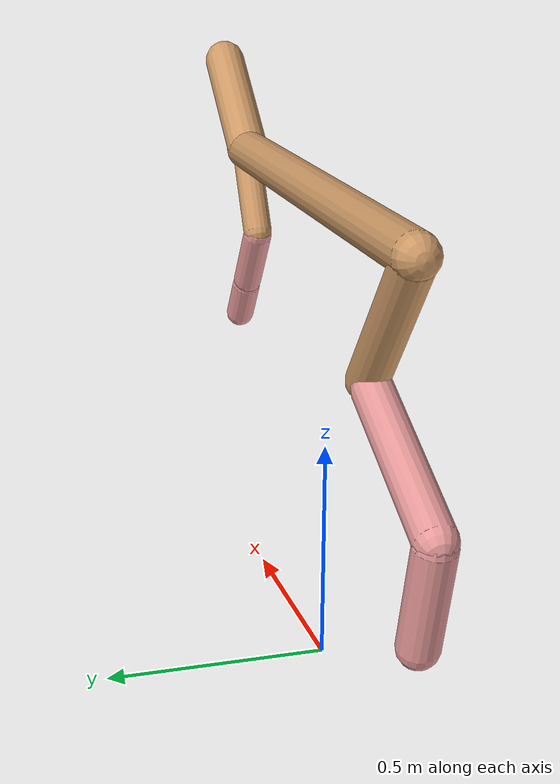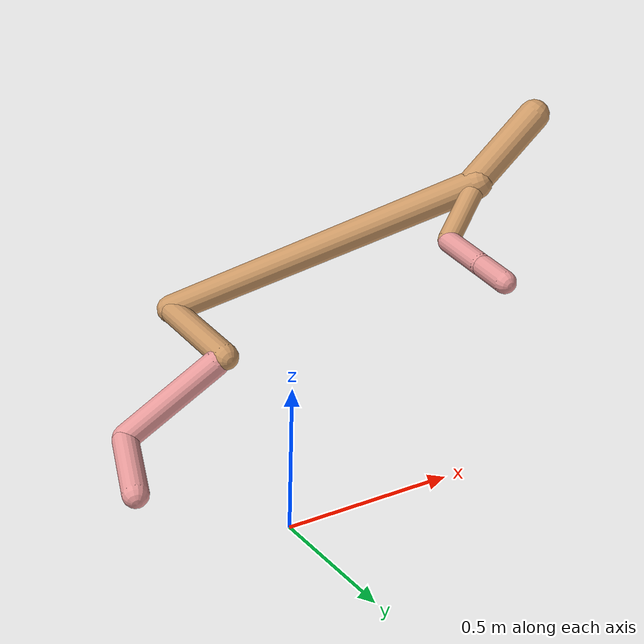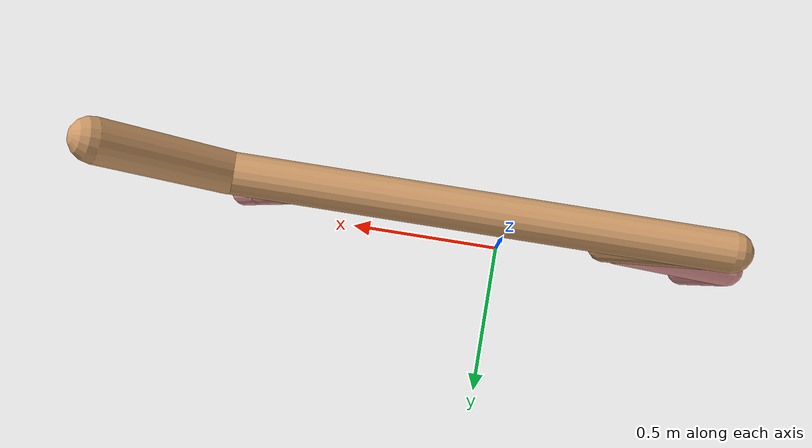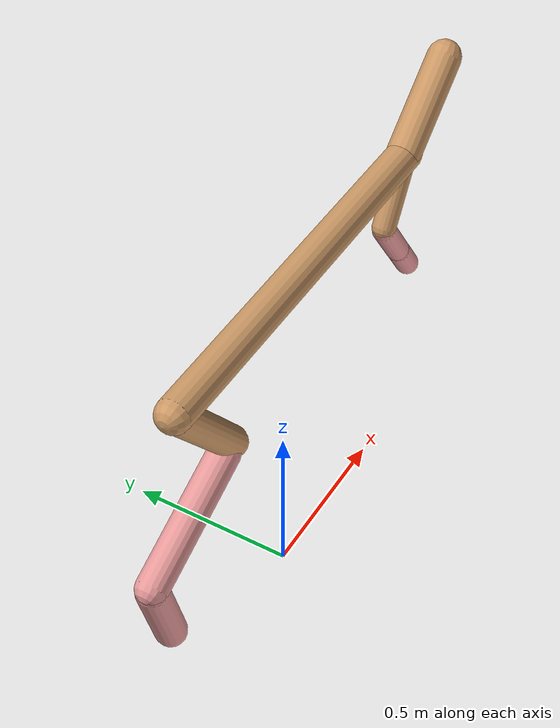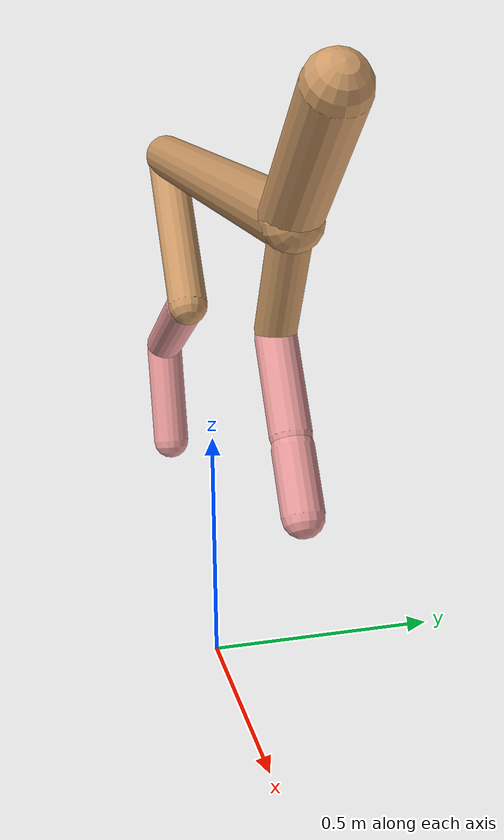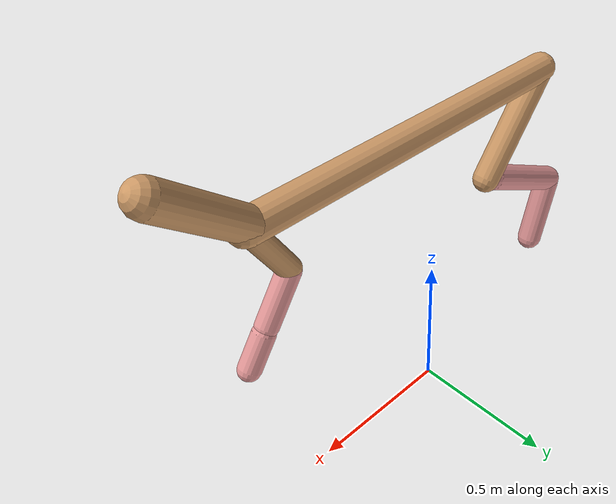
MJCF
<mujoco model="cheetah">
  <compiler angle="radian" coordinate="local" inertiafromgeom="true" settotalmass="14" />
  <default>
    <joint armature=".1" damping=".01" limited="true" solimplimit="0 .8 .03" solreflimit=".02 1" stiffness="8" />
    <geom conaffinity="0" condim="3" contype="1" friction="0.8 .1 .1" rgba="0.8 0.6 .4 1" solimp="0.0 0.8 0.01" solref="0.02 1" />
    <motor ctrllimited="true" ctrlrange="-1 1" />
  </default>
  <size nstack="300000" nuser_geom="1" />
  <option gravity="0 0 -9.81" timestep="0.01" />
  <worldbody>
    <body name="torso" pos="0.0 0.0 1.0504768378590348">
      <joint armature="0" axis="1 0 0" damping="0" limited="false" name="ignorex" pos="0 0 0" stiffness="0" type="slide" />
      <joint armature="0" axis="0 0 1" damping="0" limited="false" name="ignorez" pos="0 0 0" stiffness="0" type="slide" />
      <joint armature="0" axis="0 1 0" damping="0" limited="false" name="ignorey" pos="0 0 0" stiffness="0" type="hinge" />
      <geom fromto="-0.5 0.0 0.0 0.6703005884586217 0.0 0.0" name="torso" size="0.0488193597700665" type="capsule" />
      <geom axisangle="0 1 0 .87" name="head" pos="0.7703005884586217 0.0 0.1" size="0.049629434595246005 0.15" type="capsule" />

      <body name="bthigh" pos="-.5 0 0">
        <joint axis="0 1 0" damping="6" name="bthigh" pos="0 0 0" range="-.52 1.05" stiffness="240" type="hinge" />
        <geom axisangle="0 1 0 -3.8" name="bthigh" pos="0.12625845544349817 0.0 -0.1641359920765476" size="0.04475207796878393 0.18806706905894918" type="capsule" />
        <body name="bshin" pos="0.2125169108869963 0.0 -0.3182719841530952">
          <joint axis="0 1 0" damping="4.5" name="bshin" pos="0 0 0" range="-.785 .785" stiffness="180" type="hinge" />
          <geom axisangle="0 1 0 -2.03" name="bshin" pos="-0.17984864579620208 0.0 -0.08992432289810104" rgba="0.9 0.6 0.6 1" size="0.04475207796878393 0.1945521404058095" type="capsule" />
          <body name="bfoot" pos="-0.35969729159240416 0.0 -0.17984864579620208">
            <joint axis="0 1 0" damping="3" name="bfoot" pos="0 0 0" range="-.4 .785" stiffness="120" type="hinge" />
            <geom axisangle="0 1 0 -.27" name="bfoot" pos="0.03824932004427481 0.0 -0.12367280147648856" rgba="0.9 0.6 0.6 1" size="0.04475207796878393 0.12191934132097396" type="capsule" />
            <inertial mass="10" />
          </body>
        </body>
      </body>
      <body name="fthigh" pos="0.6703005884586217 0.0 0.0">
        <joint axis="0 1 0" damping="4.5" name="fthigh" pos="0 0 0" range="-1.5 0.8" stiffness="180" type="hinge" />
        <geom axisangle="0 1 0 .52" name="fthigh" pos="-0.05646701666178904 0.0 -0.09680059999163834" size="0.034674084744965486 0.10614196956624955" type="capsule" />
        <body name="fshin" pos="-0.11293403332357808 0.0 -0.19360119998327668">
          <joint axis="0 1 0" damping="3" name="fshin" pos="0 0 0" range="-1.2 1.1" stiffness="120" type="hinge" />
          <geom axisangle="0 1 0 -.6" name="fshin" pos="0.0524671951122897 0.0 -0.07264688554009342" rgba="0.9 0.6 0.6 1" size="0.034674084744965486 0.08459435168437933" type="capsule" />
          <body name="ffoot" pos="0.1049343902245794 0.0 -0.14529377108018685">
            <joint axis="0 1 0" damping="1.5" name="ffoot" pos="0 0 0" range="-3.1 -0.3" stiffness="60" type="hinge" />
            <geom axisangle="0 1 0 -.6" name="ffoot" pos="0.03735595587116866 0.0 -0.05810926468848459" rgba="0.9 0.6 0.6 1" size="0.034674084744965486 0.055864194508552394" type="capsule" />
            <inertial mass="10" />
          </body>
        </body>
      </body>
    </body>
  </worldbody>
  <actuator>
    <motor gear="120" joint="bthigh" name="bthigh" />
    <motor gear="90" joint="bshin" name="bshin" />
    <motor gear="60" joint="bfoot" name="bfoot" />
    <motor gear="120" joint="fthigh" name="fthigh" />
    <motor gear="60" joint="fshin" name="fshin" />
    <motor gear="30" joint="ffoot" name="ffoot" />
  </actuator>
</mujoco>
